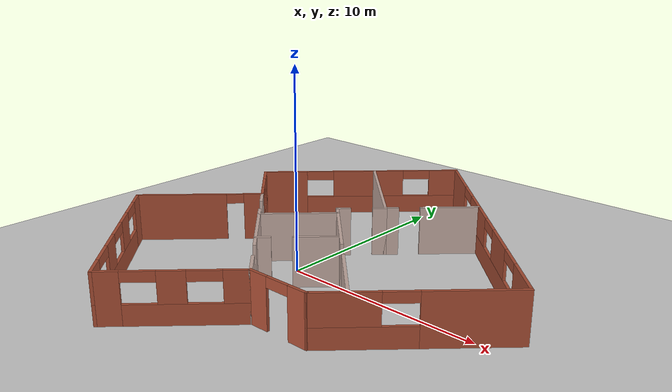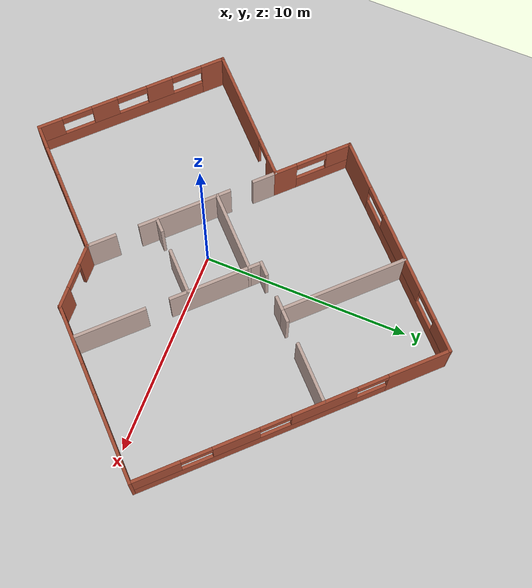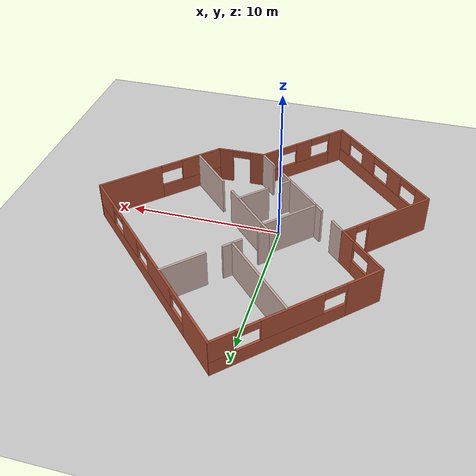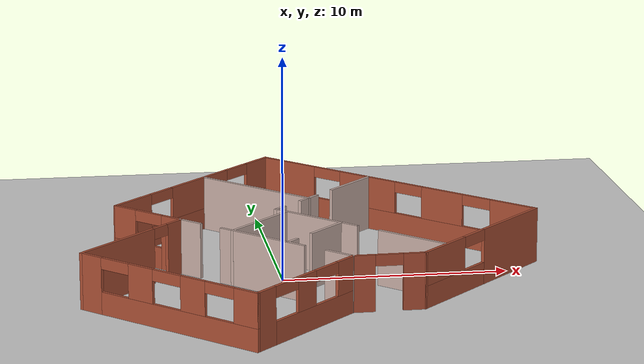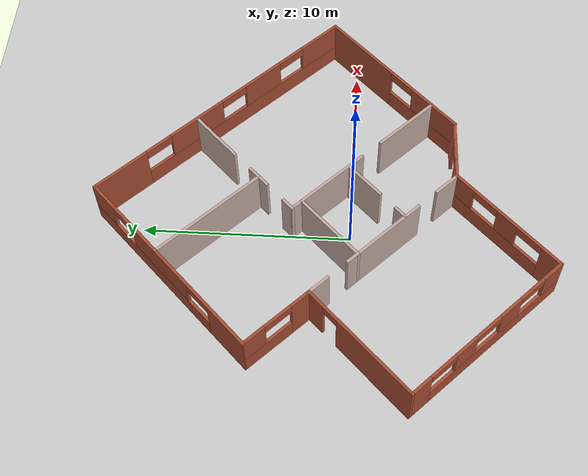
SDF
<sdf version="1.7">
 <world name="default">
  <model name="ground_plane">
   <static>1</static>
   <link name="link">
    <collision name="collision">
     <geometry><plane><normal>0 0 1</normal><size>100 100</size></plane></geometry>
     <surface><friction><ode><mu>100</mu><mu2>50</mu2></ode></friction></surface>
    </collision>
    <visual name="visual">
     <cast_shadows>0</cast_shadows>
     <geometry><plane><normal>0 0 1</normal><size>100 100</size></plane></geometry>
     <material>
      <script><uri>file://media/materials/scripts/gazebo.material</uri><name>Gazebo/Grey</name></script>
     </material>
    </visual>
   </link>
  </model>
  <model name="object_detection_house_clone">
   <pose>0.007293 0.520418 0 0 -0 0.78398</pose>
   <link name="Wall_16">
    <pose>-2.225 5.7643 0 0 -0 1.5708</pose>
    <visual name="Wall_16_Visual_0">
     <pose>-1.37127 0 1.25 0 -0 0</pose>
     <geometry><box><size>1.14978 0.15 2.5</size></box></geometry>
     <material>
      <script><uri>file://media/materials/scripts/gazebo.material</uri><name>Gazebo/Bricks</name></script>
      <ambient>0.760784 0.662745 0.627451 1</ambient>
     </material>
     <meta><layer>0</layer></meta>
    </visual>
    <collision name="Wall_16_Collision_0">
     <geometry><box><size>1.14978 0.15 2.5</size></box></geometry>
     <pose>-1.37127 0 1.25 0 -0 0</pose>
    </collision>
    <visual name="Wall_16_Visual_1">
     <pose>0.574889 0 0.5 0 -0 0</pose>
     <geometry><box><size>2.74254 0.15 1</size></box></geometry>
     <material>
      <script><uri>file://media/materials/scripts/gazebo.material</uri><name>Gazebo/Bricks</name></script>
      <ambient>0.760784 0.662745 0.627451 1</ambient>
     </material>
     <meta><layer>0</layer></meta>
    </visual>
    <collision name="Wall_16_Collision_1">
     <geometry><box><size>2.74254 0.15 1</size></box></geometry>
     <pose>0.574889 0 0.5 0 -0 0</pose>
    </collision>
    <visual name="Wall_16_Visual_2">
     <pose>1.32489 0 1.75 0 -0 0</pose>
     <geometry><box><size>1.24254 0.15 1.5</size></box></geometry>
     <material>
      <script><uri>file://media/materials/scripts/gazebo.material</uri><name>Gazebo/Bricks</name></script>
      <ambient>0.760784 0.662745 0.627451 1</ambient>
     </material>
     <meta><layer>0</layer></meta>
    </visual>
    <collision name="Wall_16_Collision_2">
     <geometry><box><size>1.24254 0.15 1.5</size></box></geometry>
     <pose>1.32489 0 1.75 0 -0 0</pose>
    </collision>
    <visual name="Wall_16_Visual_3">
     <pose>-0.046381 0 2.25 0 -0 0</pose>
     <geometry><box><size>1.5 0.15 0.5</size></box></geometry>
     <material>
      <script><uri>file://media/materials/scripts/gazebo.material</uri><name>Gazebo/Bricks</name></script>
      <ambient>0.760784 0.662745 0.627451 1</ambient>
     </material>
     <meta><layer>0</layer></meta>
    </visual>
    <collision name="Wall_16_Collision_3">
     <geometry><box><size>1.5 0.15 0.5</size></box></geometry>
     <pose>-0.046381 0 2.25 0 -0 0</pose>
    </collision>
   </link>
   <link name="Wall_17">
    <pose>3.25 7.6869 0 0 -0 0</pose>
    <visual name="Wall_17_Visual_0">
     <pose>-4.3173 0 1.25 0 -0 0</pose>
     <geometry><box><size>2.4654 0.15 2.5</size></box></geometry>
     <material>
      <script><uri>file://media/materials/scripts/gazebo.material</uri><name>Gazebo/Bricks</name></script>
      <ambient>0.760784 0.662745 0.627451 1</ambient>
     </material>
     <meta><layer>0</layer></meta>
    </visual>
    <collision name="Wall_17_Collision_0">
     <geometry><box><size>2.4654 0.15 2.5</size></box></geometry>
     <pose>-4.3173 0 1.25 0 -0 0</pose>
    </collision>
    <visual name="Wall_17_Visual_1">
     <pose>1.2327 0 0.5 0 -0 0</pose>
     <geometry><box><size>8.6346 0.15 1</size></box></geometry>
     <material>
      <script><uri>file://media/materials/scripts/gazebo.material</uri><name>Gazebo/Bricks</name></script>
      <ambient>0.760784 0.662745 0.627451 1</ambient>
     </material>
     <meta><layer>0</layer></meta>
    </visual>
    <collision name="Wall_17_Collision_1">
     <geometry><box><size>8.6346 0.15 1</size></box></geometry>
     <pose>1.2327 0 0.5 0 -0 0</pose>
    </collision>
    <visual name="Wall_17_Visual_2">
     <pose>0.415157 0 1.75 0 -0 0</pose>
     <geometry><box><size>3.99951 0.15 1.5</size></box></geometry>
     <material>
      <script><uri>file://media/materials/scripts/gazebo.material</uri><name>Gazebo/Bricks</name></script>
      <ambient>0.760784 0.662745 0.627451 1</ambient>
     </material>
     <meta><layer>0</layer></meta>
    </visual>
    <collision name="Wall_17_Collision_2">
     <geometry><box><size>3.99951 0.15 1.5</size></box></geometry>
     <pose>0.415157 0 1.75 0 -0 0</pose>
    </collision>
    <visual name="Wall_17_Visual_3">
     <pose>4.73246 0 1.75 0 -0 0</pose>
     <geometry><box><size>1.63509 0.15 1.5</size></box></geometry>
     <material>
      <script><uri>file://media/materials/scripts/gazebo.material</uri><name>Gazebo/Bricks</name></script>
      <ambient>0.760784 0.662745 0.627451 1</ambient>
     </material>
     <meta><layer>0</layer></meta>
    </visual>
    <collision name="Wall_17_Collision_3">
     <geometry><box><size>1.63509 0.15 1.5</size></box></geometry>
     <pose>4.73246 0 1.75 0 -0 0</pose>
    </collision>
    <visual name="Wall_17_Visual_4">
     <pose>-2.3346 0 2.25 0 -0 0</pose>
     <geometry><box><size>1.5 0.15 0.5</size></box></geometry>
     <material>
      <script><uri>file://media/materials/scripts/gazebo.material</uri><name>Gazebo/Bricks</name></script>
      <ambient>0.760784 0.662745 0.627451 1</ambient>
     </material>
     <meta><layer>0</layer></meta>
    </visual>
    <collision name="Wall_17_Collision_4">
     <geometry><box><size>1.5 0.15 0.5</size></box></geometry>
     <pose>-2.3346 0 2.25 0 -0 0</pose>
    </collision>
    <visual name="Wall_17_Visual_5">
     <pose>3.16491 0 2.25 0 -0 0</pose>
     <geometry><box><size>1.5 0.15 0.5</size></box></geometry>
     <material>
      <script><uri>file://media/materials/scripts/gazebo.material</uri><name>Gazebo/Bricks</name></script>
      <ambient>0.760784 0.662745 0.627451 1</ambient>
     </material>
     <meta><layer>0</layer></meta>
    </visual>
    <collision name="Wall_17_Collision_5">
     <geometry><box><size>1.5 0.15 0.5</size></box></geometry>
     <pose>3.16491 0 2.25 0 -0 0</pose>
    </collision>
   </link>
   <link name="Wall_19">
    <pose>8.725 -0.010203 0 0 -0 -1.5708</pose>
    <visual name="Wall_19_Visual_0">
     <pose>-6.20585 0 1.25 0 -0 0</pose>
     <geometry><box><size>3.02962 0.15 2.5</size></box></geometry>
     <material>
      <script><uri>file://media/materials/scripts/gazebo.material</uri><name>Gazebo/Bricks</name></script>
      <ambient>0.760784 0.662745 0.627451 1</ambient>
     </material>
     <meta><layer>0</layer></meta>
    </visual>
    <collision name="Wall_19_Collision_0">
     <geometry><box><size>3.02962 0.15 2.5</size></box></geometry>
     <pose>-6.20585 0 1.25 0 -0 0</pose>
    </collision>
    <visual name="Wall_19_Visual_1">
     <pose>1.51481 0 0.5 0 -0 0</pose>
     <geometry><box><size>12.4117 0.15 1</size></box></geometry>
     <material>
      <script><uri>file://media/materials/scripts/gazebo.material</uri><name>Gazebo/Bricks</name></script>
      <ambient>0.760784 0.662745 0.627451 1</ambient>
     </material>
     <meta><layer>0</layer></meta>
    </visual>
    <collision name="Wall_19_Collision_1">
     <geometry><box><size>12.4117 0.15 1</size></box></geometry>
     <pose>1.51481 0 0.5 0 -0 0</pose>
    </collision>
    <visual name="Wall_19_Visual_2">
     <pose>-1.59256 0 1.75 0 -0 0</pose>
     <geometry><box><size>3.19696 0.15 1.5</size></box></geometry>
     <material>
      <script><uri>file://media/materials/scripts/gazebo.material</uri><name>Gazebo/Bricks</name></script>
      <ambient>0.760784 0.662745 0.627451 1</ambient>
     </material>
     <meta><layer>0</layer></meta>
    </visual>
    <collision name="Wall_19_Collision_2">
     <geometry><box><size>3.19696 0.15 1.5</size></box></geometry>
     <pose>-1.59256 0 1.75 0 -0 0</pose>
    </collision>
    <visual name="Wall_19_Visual_3">
     <pose>2.63692 0 1.75 0 -0 0</pose>
     <geometry><box><size>2.26201 0.15 1.5</size></box></geometry>
     <material>
      <script><uri>file://media/materials/scripts/gazebo.material</uri><name>Gazebo/Bricks</name></script>
      <ambient>0.760784 0.662745 0.627451 1</ambient>
     </material>
     <meta><layer>0</layer></meta>
    </visual>
    <collision name="Wall_19_Collision_3">
     <geometry><box><size>2.26201 0.15 1.5</size></box></geometry>
     <pose>2.63692 0 1.75 0 -0 0</pose>
    </collision>
    <visual name="Wall_19_Visual_4">
     <pose>6.49429 0 1.75 0 -0 0</pose>
     <geometry><box><size>2.45273 0.15 1.5</size></box></geometry>
     <material>
      <script><uri>file://media/materials/scripts/gazebo.material</uri><name>Gazebo/Bricks</name></script>
      <ambient>0.760784 0.662745 0.627451 1</ambient>
     </material>
     <meta><layer>0</layer></meta>
    </visual>
    <collision name="Wall_19_Collision_4">
     <geometry><box><size>2.45273 0.15 1.5</size></box></geometry>
     <pose>6.49429 0 1.75 0 -0 0</pose>
    </collision>
    <visual name="Wall_19_Visual_5">
     <pose>-3.94104 0 2.25 0 -0 0</pose>
     <geometry><box><size>1.5 0.15 0.5</size></box></geometry>
     <material>
      <script><uri>file://media/materials/scripts/gazebo.material</uri><name>Gazebo/Bricks</name></script>
      <ambient>0.760784 0.662745 0.627451 1</ambient>
     </material>
     <meta><layer>0</layer></meta>
    </visual>
    <collision name="Wall_19_Collision_5">
     <geometry><box><size>1.5 0.15 0.5</size></box></geometry>
     <pose>-3.94104 0 2.25 0 -0 0</pose>
    </collision>
    <visual name="Wall_19_Visual_6">
     <pose>0.755915 0 2.25 0 -0 0</pose>
     <geometry><box><size>1.5 0.15 0.5</size></box></geometry>
     <material>
      <script><uri>file://media/materials/scripts/gazebo.material</uri><name>Gazebo/Bricks</name></script>
      <ambient>0.760784 0.662745 0.627451 1</ambient>
     </material>
     <meta><layer>0</layer></meta>
    </visual>
    <collision name="Wall_19_Collision_6">
     <geometry><box><size>1.5 0.15 0.5</size></box></geometry>
     <pose>0.755915 0 2.25 0 -0 0</pose>
    </collision>
    <visual name="Wall_19_Visual_7">
     <pose>4.51793 0 2.25 0 -0 0</pose>
     <geometry><box><size>1.5 0.15 0.5</size></box></geometry>
     <material>
      <script><uri>file://media/materials/scripts/gazebo.material</uri><name>Gazebo/Bricks</name></script>
      <ambient>0.760784 0.662745 0.627451 1</ambient>
     </material>
     <meta><layer>0</layer></meta>
    </visual>
    <collision name="Wall_19_Collision_7">
     <geometry><box><size>1.5 0.15 0.5</size></box></geometry>
     <pose>4.51793 0 2.25 0 -0 0</pose>
    </collision>
   </link>
   <link name="Wall_20">
    <pose>4.375 -7.65586 0 0 -0 3.14159</pose>
    <visual name="Wall_20_Visual_0">
     <pose>-2.24624 0 1.25 0 -0 0</pose>
     <geometry><box><size>4.35752 0.15 2.5</size></box></geometry>
     <material>
      <script><uri>file://media/materials/scripts/gazebo.material</uri><name>Gazebo/Bricks</name></script>
      <ambient>0.760784 0.662745 0.627451 1</ambient>
     </material>
     <meta><layer>0</layer></meta>
    </visual>
    <collision name="Wall_20_Collision_0">
     <geometry><box><size>4.35752 0.15 2.5</size></box></geometry>
     <pose>-2.24624 0 1.25 0 -0 0</pose>
    </collision>
    <visual name="Wall_20_Visual_1">
     <pose>2.17876 0 0.5 0 -0 0</pose>
     <geometry><box><size>4.49248 0.15 1</size></box></geometry>
     <material>
      <script><uri>file://media/materials/scripts/gazebo.material</uri><name>Gazebo/Bricks</name></script>
      <ambient>0.760784 0.662745 0.627451 1</ambient>
     </material>
     <meta><layer>0</layer></meta>
    </visual>
    <collision name="Wall_20_Collision_1">
     <geometry><box><size>4.49248 0.15 1</size></box></geometry>
     <pose>2.17876 0 0.5 0 -0 0</pose>
    </collision>
    <visual name="Wall_20_Visual_2">
     <pose>2.92876 0 1.75 0 -0 0</pose>
     <geometry><box><size>2.99248 0.15 1.5</size></box></geometry>
     <material>
      <script><uri>file://media/materials/scripts/gazebo.material</uri><name>Gazebo/Bricks</name></script>
      <ambient>0.760784 0.662745 0.627451 1</ambient>
     </material>
     <meta><layer>0</layer></meta>
    </visual>
    <collision name="Wall_20_Collision_2">
     <geometry><box><size>2.99248 0.15 1.5</size></box></geometry>
     <pose>2.92876 0 1.75 0 -0 0</pose>
    </collision>
    <visual name="Wall_20_Visual_3">
     <pose>0.682517 0 2.25 0 -0 0</pose>
     <geometry><box><size>1.5 0.15 0.5</size></box></geometry>
     <material>
      <script><uri>file://media/materials/scripts/gazebo.material</uri><name>Gazebo/Bricks</name></script>
      <ambient>0.760784 0.662745 0.627451 1</ambient>
     </material>
     <meta><layer>0</layer></meta>
    </visual>
    <collision name="Wall_20_Collision_3">
     <geometry><box><size>1.5 0.15 0.5</size></box></geometry>
     <pose>0.682517 0 2.25 0 -0 0</pose>
    </collision>
   </link>
   <link name="Wall_22">
    <collision name="Wall_22_Collision">
     <geometry><box><size>1.5 0.15 2.5</size></box></geometry>
     <pose>0 0 1.25 0 -0 0</pose>
    </collision>
    <visual name="Wall_22_Visual">
     <pose>0 0 1.25 0 -0 0</pose>
     <geometry><box><size>1.5 0.15 2.5</size></box></geometry>
     <material>
      <script><uri>file://media/materials/scripts/gazebo.material</uri><name>Gazebo/Grey</name></script>
      <ambient>0.760784 0.662745 0.627451 1</ambient>
     </material>
     <meta><layer>0</layer></meta>
    </visual>
    <pose>-2.225 -4.82686 0 0 -0 1.5708</pose>
   </link>
   <link name="Wall_24">
    <collision name="Wall_24_Collision">
     <geometry><box><size>3.525 0.15 2.5</size></box></geometry>
     <pose>0 0 1.25 0 -0 0</pose>
    </collision>
    <visual name="Wall_24_Visual">
     <pose>0 0 1.25 0 -0 0</pose>
     <geometry><box><size>3.525 0.15 2.5</size></box></geometry>
     <material>
      <script><uri>file://media/materials/scripts/gazebo.material</uri><name>Gazebo/Grey</name></script>
      <ambient>0.760784 0.662745 0.627451 1</ambient>
     </material>
     <meta><layer>0</layer></meta>
    </visual>
    <pose>1.62 -5.86436 0 0 -0 1.5708</pose>
   </link>
   <link name="Wall_26">
    <collision name="Wall_26_Collision">
     <geometry><box><size>4 0.15 2.5</size></box></geometry>
     <pose>0 0 1.25 0 -0 0</pose>
    </collision>
    <visual name="Wall_26_Visual">
     <pose>0 0 1.25 0 -0 0</pose>
     <geometry><box><size>4 0.15 2.5</size></box></geometry>
     <material>
      <script><uri>file://media/materials/scripts/gazebo.material</uri><name>Gazebo/Grey</name></script>
      <ambient>0.760784 0.662745 0.627451 1</ambient>
     </material>
     <meta><layer>0</layer></meta>
    </visual>
    <pose>-2.231 -0.981862 0 0 -0 -1.5708</pose>
   </link>
   <link name="Wall_3">
    <pose>-5.475 3.89314 0 0 -0 0</pose>
    <visual name="Wall_3_Visual_0">
     <pose>-0.971381 0 1.25 0 -0 0</pose>
     <geometry><box><size>4.70724 0.15 2.5</size></box></geometry>
     <material>
      <script><uri>file://media/materials/scripts/gazebo.material</uri><name>Gazebo/Bricks</name></script>
      <ambient>0.760784 0.662745 0.627451 1</ambient>
     </material>
     <meta><layer>0</layer></meta>
    </visual>
    <collision name="Wall_3_Collision_0">
     <geometry><box><size>4.70724 0.15 2.5</size></box></geometry>
     <pose>-0.971381 0 1.25 0 -0 0</pose>
    </collision>
    <visual name="Wall_3_Visual_1">
     <pose>2.80362 0 1.25 0 -0 0</pose>
     <geometry><box><size>1.04276 0.15 2.5</size></box></geometry>
     <material>
      <script><uri>file://media/materials/scripts/gazebo.material</uri><name>Gazebo/Bricks</name></script>
      <ambient>0.760784 0.662745 0.627451 1</ambient>
     </material>
     <meta><layer>0</layer></meta>
    </visual>
    <collision name="Wall_3_Collision_1">
     <geometry><box><size>1.04276 0.15 2.5</size></box></geometry>
     <pose>2.80362 0 1.25 0 -0 0</pose>
    </collision>
    <visual name="Wall_3_Visual_2">
     <pose>1.83224 0 2.25 0 -0 0</pose>
     <geometry><box><size>0.9 0.15 0.5</size></box></geometry>
     <material>
      <script><uri>file://media/materials/scripts/gazebo.material</uri><name>Gazebo/Bricks</name></script>
      <ambient>0.760784 0.662745 0.627451 1</ambient>
     </material>
     <meta><layer>0</layer></meta>
    </visual>
    <collision name="Wall_3_Collision_2">
     <geometry><box><size>0.9 0.15 0.5</size></box></geometry>
     <pose>1.83224 0 2.25 0 -0 0</pose>
    </collision>
   </link>
   <link name="Wall_32">
    <pose>-1.1 -6.57886 0 0 -0 -0.763603</pose>
    <visual name="Wall_32_Visual_0">
     <pose>-1.11687 0 1.25 0 -0 0</pose>
     <geometry><box><size>1.0311 0.15 2.5</size></box></geometry>
     <material>
      <script><uri>file://media/materials/scripts/gazebo.material</uri><name>Gazebo/Bricks</name></script>
      <ambient>0.760784 0.662745 0.627451 1</ambient>
     </material>
     <meta><layer>0</layer></meta>
    </visual>
    <collision name="Wall_32_Collision_0">
     <geometry><box><size>1.0311 0.15 2.5</size></box></geometry>
     <pose>-1.11687 0 1.25 0 -0 0</pose>
    </collision>
    <visual name="Wall_32_Visual_1">
     <pose>1.11555 0 1.25 0 -0 0</pose>
     <geometry><box><size>1.03374 0.15 2.5</size></box></geometry>
     <material>
      <script><uri>file://media/materials/scripts/gazebo.material</uri><name>Gazebo/Bricks</name></script>
      <ambient>0.760784 0.662745 0.627451 1</ambient>
     </material>
     <meta><layer>0</layer></meta>
    </visual>
    <collision name="Wall_32_Collision_1">
     <geometry><box><size>1.03374 0.15 2.5</size></box></geometry>
     <pose>1.11555 0 1.25 0 -0 0</pose>
    </collision>
    <visual name="Wall_32_Visual_2">
     <pose>-0.00132 0 2.25 0 -0 0</pose>
     <geometry><box><size>1.2 0.15 0.5</size></box></geometry>
     <material>
      <script><uri>file://media/materials/scripts/gazebo.material</uri><name>Gazebo/Bricks</name></script>
      <ambient>0.760784 0.662745 0.627451 1</ambient>
     </material>
     <meta><layer>0</layer></meta>
    </visual>
    <collision name="Wall_32_Collision_2">
     <geometry><box><size>1.2 0.15 0.5</size></box></geometry>
     <pose>-0.00132 0 2.25 0 -0 0</pose>
    </collision>
   </link>
   <link name="Wall_35">
    <collision name="Wall_35_Collision">
     <geometry><box><size>1.25 0.15 2.5</size></box></geometry>
     <pose>0 0 1.25 0 -0 0</pose>
    </collision>
    <visual name="Wall_35_Visual">
     <pose>0 0 1.25 0 -0 0</pose>
     <geometry><box><size>1.25 0.15 2.5</size></box></geometry>
     <material>
      <script><uri>file://media/materials/scripts/gazebo.material</uri><name>Gazebo/Grey</name></script>
      <ambient>0.760784 0.662745 0.627451 1</ambient>
     </material>
     <meta><layer>0</layer></meta>
    </visual>
    <pose>-2.225 3.34314 0 0 -0 -1.5708</pose>
   </link>
   <link name="Wall_37">
    <collision name="Wall_37_Collision">
     <geometry><box><size>4.00071 0.15 2.5</size></box></geometry>
     <pose>0 0 1.25 0 -0 0</pose>
    </collision>
    <visual name="Wall_37_Visual">
     <pose>0 0 1.25 0 -0 0</pose>
     <geometry><box><size>4.00071 0.15 2.5</size></box></geometry>
     <material>
      <script><uri>file://media/materials/scripts/gazebo.material</uri><name>Gazebo/Grey</name></script>
      <ambient>0.760784 0.662745 0.627451 1</ambient>
     </material>
     <meta><layer>0</layer></meta>
    </visual>
    <pose>-0.306 0.943138 0 0 -0 0</pose>
   </link>
   <link name="Wall_38">
    <collision name="Wall_38_Collision">
     <geometry><box><size>4 0.15 2.5</size></box></geometry>
     <pose>0 0 1.25 0 -0 0</pose>
    </collision>
    <visual name="Wall_38_Visual">
     <pose>0 0 1.25 0 -0 0</pose>
     <geometry><box><size>4 0.15 2.5</size></box></geometry>
     <material>
      <script><uri>file://media/materials/scripts/gazebo.material</uri><name>Gazebo/Grey</name></script>
      <ambient>0.760784 0.662745 0.627451 1</ambient>
     </material>
     <meta><layer>0</layer></meta>
    </visual>
    <pose>1.619 -0.981862 0 0 -0 -1.5708</pose>
   </link>
   <link name="Wall_40">
    <collision name="Wall_40_Collision">
     <geometry><box><size>0.75 0.15 2.5</size></box></geometry>
     <pose>0 0 1.25 0 -0 0</pose>
    </collision>
    <visual name="Wall_40_Visual">
     <pose>0 0 1.25 0 -0 0</pose>
     <geometry><box><size>0.75 0.15 2.5</size></box></geometry>
     <material>
      <script><uri>file://media/materials/scripts/gazebo.material</uri><name>Gazebo/Grey</name></script>
      <ambient>0.760784 0.662745 0.627451 1</ambient>
     </material>
     <meta><layer>0</layer></meta>
    </visual>
    <pose>-2.231 1.24314 0 0 -0 1.5708</pose>
   </link>
   <link name="Wall_42">
    <collision name="Wall_42_Collision">
     <geometry><box><size>0.75 0.15 2.5</size></box></geometry>
     <pose>0 0 1.25 0 -0 0</pose>
    </collision>
    <visual name="Wall_42_Visual">
     <pose>0 0 1.25 0 -0 0</pose>
     <geometry><box><size>0.75 0.15 2.5</size></box></geometry>
     <material>
      <script><uri>file://media/materials/scripts/gazebo.material</uri><name>Gazebo/Grey</name></script>
      <ambient>0.760784 0.662745 0.627451 1</ambient>
     </material>
     <meta><layer>0</layer></meta>
    </visual>
    <pose>-1.909 -2.06086 0 0 -0 0</pose>
   </link>
   <link name="Wall_44">
    <collision name="Wall_44_Collision">
     <geometry><box><size>2.25 0.15 2.5</size></box></geometry>
     <pose>0 0 1.25 0 -0 0</pose>
    </collision>
    <visual name="Wall_44_Visual">
     <pose>0 0 1.25 0 -0 0</pose>
     <geometry><box><size>2.25 0.15 2.5</size></box></geometry>
     <material>
      <script><uri>file://media/materials/scripts/gazebo.material</uri><name>Gazebo/Grey</name></script>
      <ambient>0.760784 0.662745 0.627451 1</ambient>
     </material>
     <meta><layer>0</layer></meta>
    </visual>
    <pose>0.541 -2.06086 0 0 -0 0</pose>
   </link>
   <link name="Wall_51">
    <collision name="Wall_51_Collision">
     <geometry><box><size>6.25 0.15 2.5</size></box></geometry>
     <pose>0 0 1.25 0 -0 0</pose>
    </collision>
    <visual name="Wall_51_Visual">
     <pose>0 0 1.25 0 -0 0</pose>
     <geometry><box><size>6.25 0.15 2.5</size></box></geometry>
     <material>
      <script><uri>file://media/materials/scripts/gazebo.material</uri><name>Gazebo/Grey</name></script>
      <ambient>0.760784 0.662745 0.627451 1</ambient>
     </material>
     <meta><layer>0</layer></meta>
    </visual>
    <pose>4.017 4.59314 0 0 -0 -1.5708</pose>
   </link>
   <link name="Wall_53">
    <collision name="Wall_53_Collision">
     <geometry><box><size>0.75 0.15 2.5</size></box></geometry>
     <pose>0 0 1.25 0 -0 0</pose>
    </collision>
    <visual name="Wall_53_Visual">
     <pose>0 0 1.25 0 -0 0</pose>
     <geometry><box><size>0.75 0.15 2.5</size></box></geometry>
     <material>
      <script><uri>file://media/materials/scripts/gazebo.material</uri><name>Gazebo/Grey</name></script>
      <ambient>0.760784 0.662745 0.627451 1</ambient>
     </material>
     <meta><layer>0</layer></meta>
    </visual>
    <pose>1.919 1.54314 0 0 -0 0</pose>
   </link>
   <link name="Wall_55">
    <collision name="Wall_55_Collision">
     <geometry><box><size>0.75 0.15 2.5</size></box></geometry>
     <pose>0 0 1.25 0 -0 0</pose>
    </collision>
    <visual name="Wall_55_Visual">
     <pose>0 0 1.25 0 -0 0</pose>
     <geometry><box><size>0.75 0.15 2.5</size></box></geometry>
     <material>
      <script><uri>file://media/materials/scripts/gazebo.material</uri><name>Gazebo/Grey</name></script>
      <ambient>0.760784 0.662745 0.627451 1</ambient>
     </material>
     <meta><layer>0</layer></meta>
    </visual>
    <pose>4.317 1.54314 0 0 -0 0</pose>
   </link>
   <link name="Wall_57">
    <collision name="Wall_57_Collision">
     <geometry><box><size>3 0.15 2.5</size></box></geometry>
     <pose>0 0 1.25 0 -0 0</pose>
    </collision>
    <visual name="Wall_57_Visual">
     <pose>0 0 1.25 0 -0 0</pose>
     <geometry><box><size>3 0.15 2.5</size></box></geometry>
     <material>
      <script><uri>file://media/materials/scripts/gazebo.material</uri><name>Gazebo/Grey</name></script>
      <ambient>0.760784 0.662745 0.627451 1</ambient>
     </material>
     <meta><layer>0</layer></meta>
    </visual>
    <pose>7.25 1.55514 0 0 -0 0</pose>
   </link>
   <link name="Wall_59">
    <collision name="Wall_59_Collision">
     <geometry><box><size>0.726898 0.15 2.5</size></box></geometry>
     <pose>0 0 1.25 0 -0 0</pose>
    </collision>
    <visual name="Wall_59_Visual">
     <pose>0 0 1.25 0 -0 0</pose>
     <geometry><box><size>0.726898 0.15 2.5</size></box></geometry>
     <material>
      <script><uri>file://media/materials/scripts/gazebo.material</uri><name>Gazebo/Grey</name></script>
      <ambient>0.760784 0.662745 0.627451 1</ambient>
     </material>
     <meta><layer>0</layer></meta>
    </visual>
    <pose>3.729 1.54314 0 0 -0 3.14159</pose>
   </link>
   <link name="Wall_6">
    <pose>-8.725 -0.804362 0 0 -0 -1.5708</pose>
    <visual name="Wall_6_Visual_0">
     <pose>-4.16985 0 1.25 0 -0 0</pose>
     <geometry><box><size>1.2053 0.15 2.5</size></box></geometry>
     <material>
      <script><uri>file://media/materials/scripts/gazebo.material</uri><name>Gazebo/Bricks</name></script>
      <ambient>0.760784 0.662745 0.627451 1</ambient>
     </material>
     <meta><layer>0</layer></meta>
    </visual>
    <collision name="Wall_6_Collision_0">
     <geometry><box><size>1.2053 0.15 2.5</size></box></geometry>
     <pose>-4.16985 0 1.25 0 -0 0</pose>
    </collision>
    <visual name="Wall_6_Visual_1">
     <pose>0.602651 0 0.5 0 -0 0</pose>
     <geometry><box><size>8.3397 0.15 1</size></box></geometry>
     <material>
      <script><uri>file://media/materials/scripts/gazebo.material</uri><name>Gazebo/Bricks</name></script>
      <ambient>0.760784 0.662745 0.627451 1</ambient>
     </material>
     <meta><layer>0</layer></meta>
    </visual>
    <collision name="Wall_6_Collision_1">
     <geometry><box><size>8.3397 0.15 1</size></box></geometry>
     <pose>0.602651 0 0.5 0 -0 0</pose>
    </collision>
    <visual name="Wall_6_Visual_2">
     <pose>-1.41028 0 1.75 0 -0 0</pose>
     <geometry><box><size>1.31384 0.15 1.5</size></box></geometry>
     <material>
      <script><uri>file://media/materials/scripts/gazebo.material</uri><name>Gazebo/Bricks</name></script>
      <ambient>0.760784 0.662745 0.627451 1</ambient>
     </material>
     <meta><layer>0</layer></meta>
    </visual>
    <collision name="Wall_6_Collision_2">
     <geometry><box><size>1.31384 0.15 1.5</size></box></geometry>
     <pose>-1.41028 0 1.75 0 -0 0</pose>
    </collision>
    <visual name="Wall_6_Visual_3">
     <pose>1.39266 0 1.75 0 -0 0</pose>
     <geometry><box><size>1.29203 0.15 1.5</size></box></geometry>
     <material>
      <script><uri>file://media/materials/scripts/gazebo.material</uri><name>Gazebo/Bricks</name></script>
      <ambient>0.760784 0.662745 0.627451 1</ambient>
     </material>
     <meta><layer>0</layer></meta>
    </visual>
    <collision name="Wall_6_Collision_3">
     <geometry><box><size>1.29203 0.15 1.5</size></box></geometry>
     <pose>1.39266 0 1.75 0 -0 0</pose>
    </collision>
    <visual name="Wall_6_Visual_4">
     <pose>4.15559 0 1.75 0 -0 0</pose>
     <geometry><box><size>1.23382 0.15 1.5</size></box></geometry>
     <material>
      <script><uri>file://media/materials/scripts/gazebo.material</uri><name>Gazebo/Bricks</name></script>
      <ambient>0.760784 0.662745 0.627451 1</ambient>
     </material>
     <meta><layer>0</layer></meta>
    </visual>
    <collision name="Wall_6_Collision_4">
     <geometry><box><size>1.23382 0.15 1.5</size></box></geometry>
     <pose>4.15559 0 1.75 0 -0 0</pose>
    </collision>
    <visual name="Wall_6_Visual_5">
     <pose>-2.8172 0 2.25 0 -0 0</pose>
     <geometry><box><size>1.5 0.15 0.5</size></box></geometry>
     <material>
      <script><uri>file://media/materials/scripts/gazebo.material</uri><name>Gazebo/Bricks</name></script>
      <ambient>0.760784 0.662745 0.627451 1</ambient>
     </material>
     <meta><layer>0</layer></meta>
    </visual>
    <collision name="Wall_6_Collision_5">
     <geometry><box><size>1.5 0.15 0.5</size></box></geometry>
     <pose>-2.8172 0 2.25 0 -0 0</pose>
    </collision>
    <visual name="Wall_6_Visual_6">
     <pose>-0.003354 0 2.25 0 -0 0</pose>
     <geometry><box><size>1.5 0.15 0.5</size></box></geometry>
     <material>
      <script><uri>file://media/materials/scripts/gazebo.material</uri><name>Gazebo/Bricks</name></script>
      <ambient>0.760784 0.662745 0.627451 1</ambient>
     </material>
     <meta><layer>0</layer></meta>
    </visual>
    <collision name="Wall_6_Collision_6">
     <geometry><box><size>1.5 0.15 0.5</size></box></geometry>
     <pose>-0.003354 0 2.25 0 -0 0</pose>
    </collision>
    <visual name="Wall_6_Visual_7">
     <pose>2.78868 0 2.25 0 -0 0</pose>
     <geometry><box><size>1.5 0.15 0.5</size></box></geometry>
     <material>
      <script><uri>file://media/materials/scripts/gazebo.material</uri><name>Gazebo/Bricks</name></script>
      <ambient>0.760784 0.662745 0.627451 1</ambient>
     </material>
     <meta><layer>0</layer></meta>
    </visual>
    <collision name="Wall_6_Collision_7">
     <geometry><box><size>1.5 0.15 0.5</size></box></geometry>
     <pose>2.78868 0 2.25 0 -0 0</pose>
    </collision>
   </link>
   <link name="Wall_61">
    <collision name="Wall_61_Collision">
     <geometry><box><size>0.75 0.15 2.5</size></box></geometry>
     <pose>0 0 1.25 0 -0 0</pose>
    </collision>
    <visual name="Wall_61_Visual">
     <pose>0 0 1.25 0 -0 0</pose>
     <geometry><box><size>0.75 0.15 2.5</size></box></geometry>
     <material>
      <script><uri>file://media/materials/scripts/gazebo.material</uri><name>Gazebo/Grey</name></script>
      <ambient>0.760784 0.662745 0.627451 1</ambient>
     </material>
     <meta><layer>0</layer></meta>
    </visual>
    <pose>1.619 1.24314 0 0 -0 -1.5708</pose>
   </link>
   <link name="Wall_7">
    <pose>-5.475 -5.50186 0 0 -0 0</pose>
    <visual name="Wall_7_Visual_0">
     <pose>-2.71877 0 1.25 0 -0 0</pose>
     <geometry><box><size>1.21245 0.15 2.5</size></box></geometry>
     <material>
      <script><uri>file://media/materials/scripts/gazebo.material</uri><name>Gazebo/Bricks</name></script>
      <ambient>0.760784 0.662745 0.627451 1</ambient>
     </material>
     <meta><layer>0</layer></meta>
    </visual>
    <collision name="Wall_7_Collision_0">
     <geometry><box><size>1.21245 0.15 2.5</size></box></geometry>
     <pose>-2.71877 0 1.25 0 -0 0</pose>
    </collision>
    <visual name="Wall_7_Visual_1">
     <pose>0.606225 0 0.5 0 -0 0</pose>
     <geometry><box><size>5.43755 0.15 1</size></box></geometry>
     <material>
      <script><uri>file://media/materials/scripts/gazebo.material</uri><name>Gazebo/Bricks</name></script>
      <ambient>0.760784 0.662745 0.627451 1</ambient>
     </material>
     <meta><layer>0</layer></meta>
    </visual>
    <collision name="Wall_7_Collision_1">
     <geometry><box><size>5.43755 0.15 1</size></box></geometry>
     <pose>0.606225 0 0.5 0 -0 0</pose>
    </collision>
    <visual name="Wall_7_Visual_2">
     <pose>0.000748 0 1.75 0 -0 0</pose>
     <geometry><box><size>1.22659 0.15 1.5</size></box></geometry>
     <material>
      <script><uri>file://media/materials/scripts/gazebo.material</uri><name>Gazebo/Bricks</name></script>
      <ambient>0.760784 0.662745 0.627451 1</ambient>
     </material>
     <meta><layer>0</layer></meta>
    </visual>
    <collision name="Wall_7_Collision_2">
     <geometry><box><size>1.22659 0.15 1.5</size></box></geometry>
     <pose>0.000748 0 1.75 0 -0 0</pose>
    </collision>
    <visual name="Wall_7_Visual_3">
     <pose>2.71952 0 1.75 0 -0 0</pose>
     <geometry><box><size>1.21096 0.15 1.5</size></box></geometry>
     <material>
      <script><uri>file://media/materials/scripts/gazebo.material</uri><name>Gazebo/Bricks</name></script>
      <ambient>0.760784 0.662745 0.627451 1</ambient>
     </material>
     <meta><layer>0</layer></meta>
    </visual>
    <collision name="Wall_7_Collision_3">
     <geometry><box><size>1.21096 0.15 1.5</size></box></geometry>
     <pose>2.71952 0 1.75 0 -0 0</pose>
    </collision>
    <visual name="Wall_7_Visual_4">
     <pose>-1.36255 0 2.25 0 -0 0</pose>
     <geometry><box><size>1.5 0.15 0.5</size></box></geometry>
     <material>
      <script><uri>file://media/materials/scripts/gazebo.material</uri><name>Gazebo/Bricks</name></script>
      <ambient>0.760784 0.662745 0.627451 1</ambient>
     </material>
     <meta><layer>0</layer></meta>
    </visual>
    <collision name="Wall_7_Collision_4">
     <geometry><box><size>1.5 0.15 0.5</size></box></geometry>
     <pose>-1.36255 0 2.25 0 -0 0</pose>
    </collision>
    <visual name="Wall_7_Visual_5">
     <pose>1.36404 0 2.25 0 -0 0</pose>
     <geometry><box><size>1.5 0.15 0.5</size></box></geometry>
     <material>
      <script><uri>file://media/materials/scripts/gazebo.material</uri><name>Gazebo/Bricks</name></script>
      <ambient>0.760784 0.662745 0.627451 1</ambient>
     </material>
     <meta><layer>0</layer></meta>
    </visual>
    <collision name="Wall_7_Collision_5">
     <geometry><box><size>1.5 0.15 0.5</size></box></geometry>
     <pose>1.36404 0 2.25 0 -0 0</pose>
    </collision>
   </link>
   <static>1</static>
  </model>
 </world>
</sdf>
